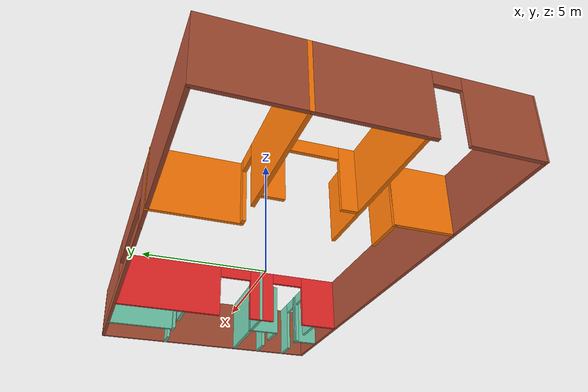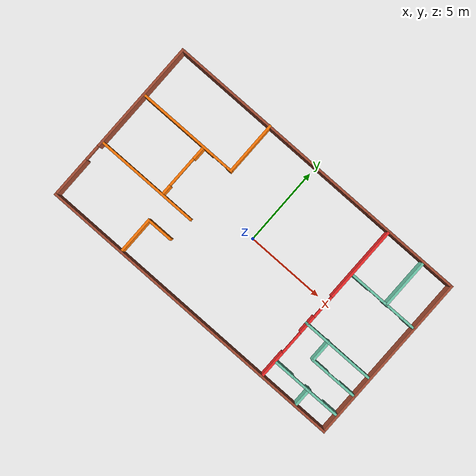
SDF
<?xml version='1.0'?>
<sdf version='1.6'>
  <model name='building'>
    <pose frame=''>0.099988 -0.038054 0 0 -0 0</pose>
    <link name='Wall_37'>
      <collision name='Wall_37_Collision'>
        <geometry>
          <box>
            <size>20.35 0.15 2.5</size>
          </box>
        </geometry>
        <pose frame=''>0 0 1.25 0 -0 0</pose>
      </collision>
      <visual name='Wall_37_Visual'>
        <pose frame=''>0 0 1.25 0 -0 0</pose>
        <geometry>
          <box>
            <size>20.35 0.15 2.5</size>
          </box>
        </geometry>
        <material>
          <script>
            <uri>file://media/materials/scripts/gazebo.material</uri>
            <name>Gazebo/Bricks</name>
          </script>
          <ambient>1 1 1 1</ambient>
        </material>
        <meta>
          <layer>0</layer>
        </meta>
      </visual>
      <pose frame=''>1.2e-05 -5.43545 0 0 -0 -0.002228</pose>
    </link>
    <link name='Wall_38'>
      <collision name='Wall_38_Collision'>
        <geometry>
          <box>
            <size>11.046 0.15 2.5</size>
          </box>
        </geometry>
        <pose frame=''>0 0 1.25 0 -0 0</pose>
      </collision>
      <visual name='Wall_38_Visual'>
        <pose frame=''>0 0 1.25 0 -0 0</pose>
        <geometry>
          <box>
            <size>11.046 0.15 2.5</size>
          </box>
        </geometry>
        <material>
          <script>
            <uri>file://media/materials/scripts/gazebo.material</uri>
            <name>Gazebo/Bricks</name>
          </script>
          <ambient>1 1 1 1</ambient>
        </material>
        <meta>
          <layer>0</layer>
        </meta>
      </visual>
      <pose frame=''>10.1 -0.009946 0 0 -0 1.5708</pose>
    </link>
    <link name='Wall_40'>
      <pose frame=''>-10.1 0.012554 0 0 -0 1.5708</pose>
      <visual name='Wall_40_Visual_0'>
        <pose frame=''>-4.15449 0 1.25 0 -0 0</pose>
        <geometry>
          <box>
            <size>2.69103 0.15 2.5</size>
          </box>
        </geometry>
        <material>
          <script>
            <uri>file://media/materials/scripts/gazebo.material</uri>
            <name>Gazebo/Bricks</name>
          </script>
          <ambient>1 1 1 1</ambient>
        </material>
        <meta>
          <layer>0</layer>
        </meta>
      </visual>
      <collision name='Wall_40_Collision_0'>
        <geometry>
          <box>
            <size>2.69103 0.15 2.5</size>
          </box>
        </geometry>
        <pose frame=''>-4.15449 0 1.25 0 -0 0</pose>
      </collision>
      <visual name='Wall_40_Visual_1'>
        <pose frame=''>1.84551 0 1.25 0 -0 0</pose>
        <geometry>
          <box>
            <size>7.30897 0.15 2.5</size>
          </box>
        </geometry>
        <material>
          <script>
            <uri>file://media/materials/scripts/gazebo.material</uri>
            <name>Gazebo/Bricks</name>
          </script>
          <ambient>1 1 1 1</ambient>
        </material>
        <meta>
          <layer>0</layer>
        </meta>
      </visual>
      <collision name='Wall_40_Collision_1'>
        <geometry>
          <box>
            <size>7.30897 0.15 2.5</size>
          </box>
        </geometry>
        <pose frame=''>1.84551 0 1.25 0 -0 0</pose>
      </collision>
      <visual name='Wall_40_Visual_2'>
        <pose frame=''>-2.30897 0 2.25 0 -0 0</pose>
        <geometry>
          <box>
            <size>1 0.15 0.5</size>
          </box>
        </geometry>
        <material>
          <script>
            <uri>file://media/materials/scripts/gazebo.material</uri>
            <name>Gazebo/Bricks</name>
          </script>
          <ambient>1 1 1 1</ambient>
        </material>
        <meta>
          <layer>0</layer>
        </meta>
      </visual>
      <collision name='Wall_40_Collision_2'>
        <geometry>
          <box>
            <size>1 0.15 0.5</size>
          </box>
        </geometry>
        <pose frame=''>-2.30897 0 2.25 0 -0 0</pose>
      </collision>
    </link>
    <link name='Wall_42'>
      <collision name='Wall_42_Collision'>
        <geometry>
          <box>
            <size>6.75 0.15 2.5</size>
          </box>
        </geometry>
        <pose frame=''>0 0 1.25 0 -0 0</pose>
      </collision>
      <visual name='Wall_42_Visual'>
        <pose frame=''>0 0 1.25 0 -0 0</pose>
        <geometry>
          <box>
            <size>6.75 0.15 2.5</size>
          </box>
        </geometry>
        <material>
          <script>
            <uri>file://media/materials/scripts/gazebo.material</uri>
            <name>Gazebo/Grey</name>
          </script>
          <ambient>0.996078 0.47451 0.0196078 1</ambient>
        </material>
        <meta>
          <layer>0</layer>
        </meta>
      </visual>
      <pose frame=''>-6.79999 -1.45995 0 0 -0 0</pose>
    </link>
    <link name='Wall_44'>
      <pose frame=''>-6.83449 2.10805 0 0 -0 0</pose>
      <visual name='Wall_44_Visual_0'>
        <pose frame=''>-0.692963 0 1.25 0 -0 0</pose>
        <geometry>
          <box>
            <size>5.29546 0.15 2.5</size>
          </box>
        </geometry>
        <material>
          <script>
            <uri>file://media/materials/scripts/gazebo.material</uri>
            <name>Gazebo/Grey</name>
          </script>
          <ambient>0.996078 0.47451 0.0196078 1</ambient>
        </material>
        <meta>
          <layer>0</layer>
        </meta>
      </visual>
      <collision name='Wall_44_Collision_0'>
        <geometry>
          <box>
            <size>5.29546 0.15 2.5</size>
          </box>
        </geometry>
        <pose frame=''>-0.692963 0 1.25 0 -0 0</pose>
      </collision>
      <visual name='Wall_44_Visual_1'>
        <pose frame=''>3.14773 0 1.25 0 -0 0</pose>
        <geometry>
          <box>
            <size>0.385926 0.15 2.5</size>
          </box>
        </geometry>
        <material>
          <script>
            <uri>file://media/materials/scripts/gazebo.material</uri>
            <name>Gazebo/Grey</name>
          </script>
          <ambient>0.996078 0.47451 0.0196078 1</ambient>
        </material>
        <meta>
          <layer>0</layer>
        </meta>
      </visual>
      <collision name='Wall_44_Collision_1'>
        <geometry>
          <box>
            <size>0.385926 0.15 2.5</size>
          </box>
        </geometry>
        <pose frame=''>3.14773 0 1.25 0 -0 0</pose>
      </collision>
      <visual name='Wall_44_Visual_2'>
        <pose frame=''>2.45477 0 2.25 0 -0 0</pose>
        <geometry>
          <box>
            <size>1 0.15 0.5</size>
          </box>
        </geometry>
        <material>
          <script>
            <uri>file://media/materials/scripts/gazebo.material</uri>
            <name>Gazebo/Grey</name>
          </script>
          <ambient>0.996078 0.47451 0.0196078 1</ambient>
        </material>
        <meta>
          <layer>0</layer>
        </meta>
      </visual>
      <collision name='Wall_44_Collision_2'>
        <geometry>
          <box>
            <size>1 0.15 0.5</size>
          </box>
        </geometry>
        <pose frame=''>2.45477 0 2.25 0 -0 0</pose>
      </collision>
    </link>
    <link name='Wall_45'>
      <collision name='Wall_45_Collision'>
        <geometry>
          <box>
            <size>3.5 0.15 2.5</size>
          </box>
        </geometry>
        <pose frame=''>0 0 1.25 0 -0 0</pose>
      </collision>
      <visual name='Wall_45_Visual'>
        <pose frame=''>0 0 1.25 0 -0 0</pose>
        <geometry>
          <box>
            <size>3.5 0.15 2.5</size>
          </box>
        </geometry>
        <material>
          <script>
            <uri>file://media/materials/scripts/gazebo.material</uri>
            <name>Gazebo/Grey</name>
          </script>
          <ambient>0.996078 0.47451 0.0196078 1</ambient>
        </material>
        <meta>
          <layer>0</layer>
        </meta>
      </visual>
      <pose frame=''>-3.5688 3.7831 0 0 -0 1.57068</pose>
    </link>
    <link name='Wall_47'>
      <pose frame=''>5.41944 1.9014 0 0 -0 1.5708</pose>
      <visual name='Wall_47_Visual_0'>
        <pose frame=''>-3.18321 0 1.25 0 -0 0</pose>
        <geometry>
          <box>
            <size>0.633579 0.15 2.5</size>
          </box>
        </geometry>
        <material>
          <script>
            <uri>file://media/materials/scripts/gazebo.material</uri>
            <name>Gazebo/Grey</name>
          </script>
          <ambient>0.937255 0.160784 0.160784 1</ambient>
        </material>
        <meta>
          <layer>0</layer>
        </meta>
      </visual>
      <collision name='Wall_47_Collision_0'>
        <geometry>
          <box>
            <size>0.633579 0.15 2.5</size>
          </box>
        </geometry>
        <pose frame=''>-3.18321 0 1.25 0 -0 0</pose>
      </collision>
      <visual name='Wall_47_Visual_1'>
        <pose frame=''>1.06679 0 1.25 0 -0 0</pose>
        <geometry>
          <box>
            <size>4.86642 0.15 2.5</size>
          </box>
        </geometry>
        <material>
          <script>
            <uri>file://media/materials/scripts/gazebo.material</uri>
            <name>Gazebo/Grey</name>
          </script>
          <ambient>0.937255 0.160784 0.160784 1</ambient>
        </material>
        <meta>
          <layer>0</layer>
        </meta>
      </visual>
      <collision name='Wall_47_Collision_1'>
        <geometry>
          <box>
            <size>4.86642 0.15 2.5</size>
          </box>
        </geometry>
        <pose frame=''>1.06679 0 1.25 0 -0 0</pose>
      </collision>
      <visual name='Wall_47_Visual_2'>
        <pose frame=''>-2.11642 0 2.25 0 -0 0</pose>
        <geometry>
          <box>
            <size>1.5 0.15 0.5</size>
          </box>
        </geometry>
        <material>
          <script>
            <uri>file://media/materials/scripts/gazebo.material</uri>
            <name>Gazebo/Grey</name>
          </script>
          <ambient>0.937255 0.160784 0.160784 1</ambient>
        </material>
        <meta>
          <layer>0</layer>
        </meta>
      </visual>
      <collision name='Wall_47_Collision_2'>
        <geometry>
          <box>
            <size>1.5 0.15 0.5</size>
          </box>
        </geometry>
        <pose frame=''>-2.11642 0 2.25 0 -0 0</pose>
      </collision>
    </link>
    <link name='Wall_49'>
      <pose frame=''>1.2e-05 5.43805 0 0 -0 0</pose>
      <visual name='Wall_49_Visual_0'>
        <pose frame=''>-6.17418 0 1.25 0 -0 0</pose>
        <geometry>
          <box>
            <size>8.00169 0.15 2.5</size>
          </box>
        </geometry>
        <material>
          <script>
            <uri>file://media/materials/scripts/gazebo.material</uri>
            <name>Gazebo/Bricks</name>
          </script>
          <ambient>1 1 1 1</ambient>
        </material>
        <meta>
          <layer>0</layer>
        </meta>
      </visual>
      <collision name='Wall_49_Collision_0'>
        <geometry>
          <box>
            <size>8.00169 0.15 2.5</size>
          </box>
        </geometry>
        <pose frame=''>-6.17418 0 1.25 0 -0 0</pose>
      </collision>
      <visual name='Wall_49_Visual_1'>
        <pose frame=''>4.00084 0 0.25 0 -0 0</pose>
        <geometry>
          <box>
            <size>12.3484 0.15 0.5</size>
          </box>
        </geometry>
        <material>
          <script>
            <uri>file://media/materials/scripts/gazebo.material</uri>
            <name>Gazebo/Bricks</name>
          </script>
          <ambient>1 1 1 1</ambient>
        </material>
        <meta>
          <layer>0</layer>
        </meta>
      </visual>
      <collision name='Wall_49_Collision_1'>
        <geometry>
          <box>
            <size>12.3484 0.15 0.5</size>
          </box>
        </geometry>
        <pose frame=''>4.00084 0 0.25 0 -0 0</pose>
      </collision>
      <visual name='Wall_49_Visual_2'>
        <pose frame=''>7.00084 0 1.5 0 -0 0</pose>
        <geometry>
          <box>
            <size>6.34836 0.15 2</size>
          </box>
        </geometry>
        <material>
          <script>
            <uri>file://media/materials/scripts/gazebo.material</uri>
            <name>Gazebo/Bricks</name>
          </script>
          <ambient>1 1 1 1</ambient>
        </material>
        <meta>
          <layer>0</layer>
        </meta>
      </visual>
      <collision name='Wall_49_Collision_2'>
        <geometry>
          <box>
            <size>6.34836 0.15 2</size>
          </box>
        </geometry>
        <pose frame=''>7.00084 0 1.5 0 -0 0</pose>
      </collision>
      <visual name='Wall_49_Visual_3'>
        <pose frame=''>0.826666 0 1.9 0 -0 0</pose>
        <geometry>
          <box>
            <size>6 0.15 1.2</size>
          </box>
        </geometry>
        <material>
          <script>
            <uri>file://media/materials/scripts/gazebo.material</uri>
            <name>Gazebo/Bricks</name>
          </script>
          <ambient>1 1 1 1</ambient>
        </material>
        <meta>
          <layer>0</layer>
        </meta>
      </visual>
      <collision name='Wall_49_Collision_3'>
        <geometry>
          <box>
            <size>6 0.15 1.2</size>
          </box>
        </geometry>
        <pose frame=''>0.826666 0 1.9 0 -0 0</pose>
      </collision>
    </link>
    <link name='Wall_51'>
      <pose frame=''>7.83851 2.24905 0 0 -0 0</pose>
      <visual name='Wall_51_Visual_0'>
        <pose frame=''>-1.70105 0 1.25 0 -0 0</pose>
        <geometry>
          <box>
            <size>1.2709 0.15 2.5</size>
          </box>
        </geometry>
        <material>
          <script>
            <uri>file://media/materials/scripts/gazebo.material</uri>
            <name>Gazebo/Grey</name>
          </script>
          <ambient>0.435294 0.796078 0.67451 1</ambient>
        </material>
        <meta>
          <layer>0</layer>
        </meta>
      </visual>
      <collision name='Wall_51_Collision_0'>
        <geometry>
          <box>
            <size>1.2709 0.15 2.5</size>
          </box>
        </geometry>
        <pose frame=''>-1.70105 0 1.25 0 -0 0</pose>
      </collision>
      <visual name='Wall_51_Visual_1'>
        <pose frame=''>0.179968 0 1.25 0 -0 0</pose>
        <geometry>
          <box>
            <size>0.491132 0.15 2.5</size>
          </box>
        </geometry>
        <material>
          <script>
            <uri>file://media/materials/scripts/gazebo.material</uri>
            <name>Gazebo/Grey</name>
          </script>
          <ambient>0.435294 0.796078 0.67451 1</ambient>
        </material>
        <meta>
          <layer>0</layer>
        </meta>
      </visual>
      <collision name='Wall_51_Collision_1'>
        <geometry>
          <box>
            <size>0.491132 0.15 2.5</size>
          </box>
        </geometry>
        <pose frame=''>0.179968 0 1.25 0 -0 0</pose>
      </collision>
      <visual name='Wall_51_Visual_2'>
        <pose frame=''>1.88102 0 1.25 0 -0 0</pose>
        <geometry>
          <box>
            <size>0.910966 0.15 2.5</size>
          </box>
        </geometry>
        <material>
          <script>
            <uri>file://media/materials/scripts/gazebo.material</uri>
            <name>Gazebo/Grey</name>
          </script>
          <ambient>0.435294 0.796078 0.67451 1</ambient>
        </material>
        <meta>
          <layer>0</layer>
        </meta>
      </visual>
      <collision name='Wall_51_Collision_2'>
        <geometry>
          <box>
            <size>0.910966 0.15 2.5</size>
          </box>
        </geometry>
        <pose frame=''>1.88102 0 1.25 0 -0 0</pose>
      </collision>
      <visual name='Wall_51_Visual_3'>
        <pose frame=''>-0.565598 0 2.25 0 -0 0</pose>
        <geometry>
          <box>
            <size>1 0.15 0.5</size>
          </box>
        </geometry>
        <material>
          <script>
            <uri>file://media/materials/scripts/gazebo.material</uri>
            <name>Gazebo/Grey</name>
          </script>
          <ambient>0.435294 0.796078 0.67451 1</ambient>
        </material>
        <meta>
          <layer>0</layer>
        </meta>
      </visual>
      <collision name='Wall_51_Collision_3'>
        <geometry>
          <box>
            <size>1 0.15 0.5</size>
          </box>
        </geometry>
        <pose frame=''>-0.565598 0 2.25 0 -0 0</pose>
      </collision>
      <visual name='Wall_51_Visual_4'>
        <pose frame=''>0.925534 0 2.25 0 -0 0</pose>
        <geometry>
          <box>
            <size>1 0.15 0.5</size>
          </box>
        </geometry>
        <material>
          <script>
            <uri>file://media/materials/scripts/gazebo.material</uri>
            <name>Gazebo/Grey</name>
          </script>
          <ambient>0.435294 0.796078 0.67451 1</ambient>
        </material>
        <meta>
          <layer>0</layer>
        </meta>
      </visual>
      <collision name='Wall_51_Collision_4'>
        <geometry>
          <box>
            <size>1 0.15 0.5</size>
          </box>
        </geometry>
        <pose frame=''>0.925534 0 2.25 0 -0 0</pose>
      </collision>
    </link>
    <link name='Wall_53'>
      <collision name='Wall_53_Collision'>
        <geometry>
          <box>
            <size>3.28078 0.15 2.5</size>
          </box>
        </geometry>
        <pose frame=''>0 0 1.25 0 -0 0</pose>
      </collision>
      <visual name='Wall_53_Visual'>
        <pose frame=''>0 0 1.25 0 -0 0</pose>
        <geometry>
          <box>
            <size>3.28078 0.15 2.5</size>
          </box>
        </geometry>
        <material>
          <script>
            <uri>file://media/materials/scripts/gazebo.material</uri>
            <name>Gazebo/Grey</name>
          </script>
          <ambient>0.435294 0.796078 0.67451 1</ambient>
        </material>
        <meta>
          <layer>0</layer>
        </meta>
      </visual>
      <pose frame=''>8.03001 3.87255 0 0 -0 -1.5708</pose>
    </link>
    <link name='Wall_55'>
      <collision name='Wall_55_Collision'>
        <geometry>
          <box>
            <size>1.5 0.15 2.5</size>
          </box>
        </geometry>
        <pose frame=''>0 0 1.25 0 -0 0</pose>
      </collision>
      <visual name='Wall_55_Visual'>
        <pose frame=''>0 0 1.25 0 -0 0</pose>
        <geometry>
          <box>
            <size>1.5 0.15 2.5</size>
          </box>
        </geometry>
        <material>
          <script>
            <uri>file://media/materials/scripts/gazebo.material</uri>
            <name>Gazebo/Grey</name>
          </script>
          <ambient>0.435294 0.796078 0.67451 1</ambient>
        </material>
        <meta>
          <layer>0</layer>
        </meta>
      </visual>
      <pose frame=''>6.98497 -2.16679 0 0 -0 -1.5708</pose>
    </link>
    <link name='Wall_56'>
      <pose frame=''>8.53497 -2.84179 0 0 -0 0</pose>
      <visual name='Wall_56_Visual_0'>
        <pose frame=''>-1.01663 0 1.25 0 -0 0</pose>
        <geometry>
          <box>
            <size>1.21674 0.15 2.5</size>
          </box>
        </geometry>
        <material>
          <script>
            <uri>file://media/materials/scripts/gazebo.material</uri>
            <name>Gazebo/Grey</name>
          </script>
          <ambient>0.435294 0.796078 0.67451 1</ambient>
        </material>
        <meta>
          <layer>0</layer>
        </meta>
      </visual>
      <collision name='Wall_56_Collision_0'>
        <geometry>
          <box>
            <size>1.21674 0.15 2.5</size>
          </box>
        </geometry>
        <pose frame=''>-1.01663 0 1.25 0 -0 0</pose>
      </collision>
      <visual name='Wall_56_Visual_1'>
        <pose frame=''>1.05837 0 1.25 0 -0 0</pose>
        <geometry>
          <box>
            <size>1.13326 0.15 2.5</size>
          </box>
        </geometry>
        <material>
          <script>
            <uri>file://media/materials/scripts/gazebo.material</uri>
            <name>Gazebo/Grey</name>
          </script>
          <ambient>0.435294 0.796078 0.67451 1</ambient>
        </material>
        <meta>
          <layer>0</layer>
        </meta>
      </visual>
      <collision name='Wall_56_Collision_1'>
        <geometry>
          <box>
            <size>1.13326 0.15 2.5</size>
          </box>
        </geometry>
        <pose frame=''>1.05837 0 1.25 0 -0 0</pose>
      </collision>
      <visual name='Wall_56_Visual_2'>
        <pose frame=''>0.041741 0 2.25 0 -0 0</pose>
        <geometry>
          <box>
            <size>0.9 0.15 0.5</size>
          </box>
        </geometry>
        <material>
          <script>
            <uri>file://media/materials/scripts/gazebo.material</uri>
            <name>Gazebo/Grey</name>
          </script>
          <ambient>0.435294 0.796078 0.67451 1</ambient>
        </material>
        <meta>
          <layer>0</layer>
        </meta>
      </visual>
      <collision name='Wall_56_Collision_2'>
        <geometry>
          <box>
            <size>0.9 0.15 0.5</size>
          </box>
        </geometry>
        <pose frame=''>0.041741 0 2.25 0 -0 0</pose>
      </collision>
    </link>
    <link name='Wall_58'>
      <pose frame=''>7.81601 -4.30195 0 0 -0 0</pose>
      <visual name='Wall_58_Visual_0'>
        <pose frame=''>-1.68725 0 1.25 0 -0 0</pose>
        <geometry>
          <box>
            <size>1.3258 0.15 2.5</size>
          </box>
        </geometry>
        <material>
          <script>
            <uri>file://media/materials/scripts/gazebo.material</uri>
            <name>Gazebo/Grey</name>
          </script>
          <ambient>0.435294 0.796078 0.67451 1</ambient>
        </material>
        <meta>
          <layer>0</layer>
        </meta>
      </visual>
      <collision name='Wall_58_Collision_0'>
        <geometry>
          <box>
            <size>1.3258 0.15 2.5</size>
          </box>
        </geometry>
        <pose frame=''>-1.68725 0 1.25 0 -0 0</pose>
      </collision>
      <visual name='Wall_58_Visual_1'>
        <pose frame=''>0.089658 0 1.25 0 -0 0</pose>
        <geometry>
          <box>
            <size>0.428016 0.15 2.5</size>
          </box>
        </geometry>
        <material>
          <script>
            <uri>file://media/materials/scripts/gazebo.material</uri>
            <name>Gazebo/Grey</name>
          </script>
          <ambient>0.435294 0.796078 0.67451 1</ambient>
        </material>
        <meta>
          <layer>0</layer>
        </meta>
      </visual>
      <collision name='Wall_58_Collision_1'>
        <geometry>
          <box>
            <size>0.428016 0.15 2.5</size>
          </box>
        </geometry>
        <pose frame=''>0.089658 0 1.25 0 -0 0</pose>
      </collision>
      <visual name='Wall_58_Visual_2'>
        <pose frame=''>1.77691 0 1.25 0 -0 0</pose>
        <geometry>
          <box>
            <size>1.14649 0.15 2.5</size>
          </box>
        </geometry>
        <material>
          <script>
            <uri>file://media/materials/scripts/gazebo.material</uri>
            <name>Gazebo/Grey</name>
          </script>
          <ambient>0.435294 0.796078 0.67451 1</ambient>
        </material>
        <meta>
          <layer>0</layer>
        </meta>
      </visual>
      <collision name='Wall_58_Collision_2'>
        <geometry>
          <box>
            <size>1.14649 0.15 2.5</size>
          </box>
        </geometry>
        <pose frame=''>1.77691 0 1.25 0 -0 0</pose>
      </collision>
      <visual name='Wall_58_Visual_3'>
        <pose frame=''>-0.57435 0 2.25 0 -0 0</pose>
        <geometry>
          <box>
            <size>0.9 0.15 0.5</size>
          </box>
        </geometry>
        <material>
          <script>
            <uri>file://media/materials/scripts/gazebo.material</uri>
            <name>Gazebo/Grey</name>
          </script>
          <ambient>0.435294 0.796078 0.67451 1</ambient>
        </material>
        <meta>
          <layer>0</layer>
        </meta>
      </visual>
      <collision name='Wall_58_Collision_3'>
        <geometry>
          <box>
            <size>0.9 0.15 0.5</size>
          </box>
        </geometry>
        <pose frame=''>-0.57435 0 2.25 0 -0 0</pose>
      </collision>
      <visual name='Wall_58_Visual_4'>
        <pose frame=''>0.753665 0 2.25 0 -0 0</pose>
        <geometry>
          <box>
            <size>0.9 0.15 0.5</size>
          </box>
        </geometry>
        <material>
          <script>
            <uri>file://media/materials/scripts/gazebo.material</uri>
            <name>Gazebo/Grey</name>
          </script>
          <ambient>0.435294 0.796078 0.67451 1</ambient>
        </material>
        <meta>
          <layer>0</layer>
        </meta>
      </visual>
      <collision name='Wall_58_Collision_4'>
        <geometry>
          <box>
            <size>0.9 0.15 0.5</size>
          </box>
        </geometry>
        <pose frame=''>0.753665 0 2.25 0 -0 0</pose>
      </collision>
    </link>
    <link name='Wall_62'>
      <pose frame=''>5.41944 -3.4486 0 0 -0 -1.5708</pose>
      <visual name='Wall_62_Visual_0'>
        <pose frame=''>-1.64393 0 1.25 0 -0 0</pose>
        <geometry>
          <box>
            <size>0.71215 0.15 2.5</size>
          </box>
        </geometry>
        <material>
          <script>
            <uri>file://media/materials/scripts/gazebo.material</uri>
            <name>Gazebo/Grey</name>
          </script>
          <ambient>0.937255 0.160784 0.160784 1</ambient>
        </material>
        <meta>
          <layer>0</layer>
        </meta>
      </visual>
      <collision name='Wall_62_Collision_0'>
        <geometry>
          <box>
            <size>0.71215 0.15 2.5</size>
          </box>
        </geometry>
        <pose frame=''>-1.64393 0 1.25 0 -0 0</pose>
      </collision>
      <visual name='Wall_62_Visual_1'>
        <pose frame=''>1.10607 0 1.25 0 -0 0</pose>
        <geometry>
          <box>
            <size>1.78785 0.15 2.5</size>
          </box>
        </geometry>
        <material>
          <script>
            <uri>file://media/materials/scripts/gazebo.material</uri>
            <name>Gazebo/Grey</name>
          </script>
          <ambient>0.937255 0.160784 0.160784 1</ambient>
        </material>
        <meta>
          <layer>0</layer>
        </meta>
      </visual>
      <collision name='Wall_62_Collision_1'>
        <geometry>
          <box>
            <size>1.78785 0.15 2.5</size>
          </box>
        </geometry>
        <pose frame=''>1.10607 0 1.25 0 -0 0</pose>
      </collision>
      <visual name='Wall_62_Visual_2'>
        <pose frame=''>-0.53785 0 2.25 0 -0 0</pose>
        <geometry>
          <box>
            <size>1.5 0.15 0.5</size>
          </box>
        </geometry>
        <material>
          <script>
            <uri>file://media/materials/scripts/gazebo.material</uri>
            <name>Gazebo/Grey</name>
          </script>
          <ambient>0.937255 0.160784 0.160784 1</ambient>
        </material>
        <meta>
          <layer>0</layer>
        </meta>
      </visual>
      <collision name='Wall_62_Collision_2'>
        <geometry>
          <box>
            <size>1.5 0.15 0.5</size>
          </box>
        </geometry>
        <pose frame=''>-0.53785 0 2.25 0 -0 0</pose>
      </collision>
    </link>
    <link name='Wall_64'>
      <collision name='Wall_64_Collision'>
        <geometry>
          <box>
            <size>2.5 0.15 2.5</size>
          </box>
        </geometry>
        <pose frame=''>0 0 1.25 0 -0 0</pose>
      </collision>
      <visual name='Wall_64_Visual'>
        <pose frame=''>0 0 1.25 0 -0 0</pose>
        <geometry>
          <box>
            <size>2.5 0.15 2.5</size>
          </box>
        </geometry>
        <material>
          <script>
            <uri>file://media/materials/scripts/gazebo.material</uri>
            <name>Gazebo/Grey</name>
          </script>
          <ambient>0.996078 0.47451 0.0196078 1</ambient>
        </material>
        <meta>
          <layer>0</layer>
        </meta>
      </visual>
      <pose frame=''>-5.20386 -4.21882 0 0 -0 1.5708</pose>
    </link>
    <link name='Wall_65'>
      <collision name='Wall_65_Collision'>
        <geometry>
          <box>
            <size>1.75 0.15 2.5</size>
          </box>
        </geometry>
        <pose frame=''>0 0 1.25 0 -0 0</pose>
      </collision>
      <visual name='Wall_65_Visual'>
        <pose frame=''>0 0 1.25 0 -0 0</pose>
        <geometry>
          <box>
            <size>1.75 0.15 2.5</size>
          </box>
        </geometry>
        <material>
          <script>
            <uri>file://media/materials/scripts/gazebo.material</uri>
            <name>Gazebo/Grey</name>
          </script>
          <ambient>0.996078 0.47451 0.0196078 1</ambient>
        </material>
        <meta>
          <layer>0</layer>
        </meta>
      </visual>
      <pose frame=''>-4.40386 -3.04382 0 0 -0 0</pose>
    </link>
    <link name='Wall_67'>
      <pose frame=''>-5.59388 0.356914 0 0 -0 -1.5708</pose>
      <visual name='Wall_67_Visual_0'>
        <pose frame=''>-1.30933 0 1.25 0 -0 0</pose>
        <geometry>
          <box>
            <size>0.881338 0.15 2.5</size>
          </box>
        </geometry>
        <material>
          <script>
            <uri>file://media/materials/scripts/gazebo.material</uri>
            <name>Gazebo/Grey</name>
          </script>
          <ambient>0.996078 0.47451 0.0196078 1</ambient>
        </material>
        <meta>
          <layer>0</layer>
        </meta>
      </visual>
      <collision name='Wall_67_Collision_0'>
        <geometry>
          <box>
            <size>0.881338 0.15 2.5</size>
          </box>
        </geometry>
        <pose frame=''>-1.30933 0 1.25 0 -0 0</pose>
      </collision>
      <visual name='Wall_67_Visual_1'>
        <pose frame=''>1.44067 0 1.25 0 -0 0</pose>
        <geometry>
          <box>
            <size>0.618662 0.15 2.5</size>
          </box>
        </geometry>
        <material>
          <script>
            <uri>file://media/materials/scripts/gazebo.material</uri>
            <name>Gazebo/Grey</name>
          </script>
          <ambient>0.996078 0.47451 0.0196078 1</ambient>
        </material>
        <meta>
          <layer>0</layer>
        </meta>
      </visual>
      <collision name='Wall_67_Collision_1'>
        <geometry>
          <box>
            <size>0.618662 0.15 2.5</size>
          </box>
        </geometry>
        <pose frame=''>1.44067 0 1.25 0 -0 0</pose>
      </collision>
      <visual name='Wall_67_Visual_2'>
        <pose frame=''>0.131338 0 2.25 0 -0 0</pose>
        <geometry>
          <box>
            <size>2 0.15 0.5</size>
          </box>
        </geometry>
        <material>
          <script>
            <uri>file://media/materials/scripts/gazebo.material</uri>
            <name>Gazebo/Grey</name>
          </script>
          <ambient>0.996078 0.47451 0.0196078 1</ambient>
        </material>
        <meta>
          <layer>0</layer>
        </meta>
      </visual>
      <collision name='Wall_67_Collision_2'>
        <geometry>
          <box>
            <size>2 0.15 0.5</size>
          </box>
        </geometry>
        <pose frame=''>0.131338 0 2.25 0 -0 0</pose>
      </collision>
    </link>
    <link name='Wall_69'>
      <collision name='Wall_69_Collision'>
        <geometry>
          <box>
            <size>1.25 0.15 2.5</size>
          </box>
        </geometry>
        <pose frame=''>0 0 1.25 0 -0 0</pose>
      </collision>
      <visual name='Wall_69_Visual'>
        <pose frame=''>0 0 1.25 0 -0 0</pose>
        <geometry>
          <box>
            <size>1.25 0.15 2.5</size>
          </box>
        </geometry>
        <material>
          <script>
            <uri>file://media/materials/scripts/gazebo.material</uri>
            <name>Gazebo/Grey</name>
          </script>
          <ambient>0.435294 0.796078 0.67451 1</ambient>
        </material>
        <meta>
          <layer>0</layer>
        </meta>
      </visual>
      <pose frame=''>7.92773 -4.82494 0 0 -0 -1.5708</pose>
    </link>
    <link name='Wall_73'>
      <collision name='Wall_73_Collision'>
        <geometry>
          <box>
            <size>4.75 0.15 2.5</size>
          </box>
        </geometry>
        <pose frame=''>0 0 1.25 0 -0 0</pose>
      </collision>
      <visual name='Wall_73_Visual'>
        <pose frame=''>0 0 1.25 0 -0 0</pose>
        <geometry>
          <box>
            <size>4.75 0.15 2.5</size>
          </box>
        </geometry>
        <material>
          <script>
            <uri>file://media/materials/scripts/gazebo.material</uri>
            <name>Gazebo/Grey</name>
          </script>
          <ambient>0.435294 0.796078 0.67451 1</ambient>
        </material>
        <meta>
          <layer>0</layer>
        </meta>
      </visual>
      <pose frame=''>7.71944 -1.5236 0 0 -0 0</pose>
    </link>
    <static>1</static>
  </model>
</sdf>
